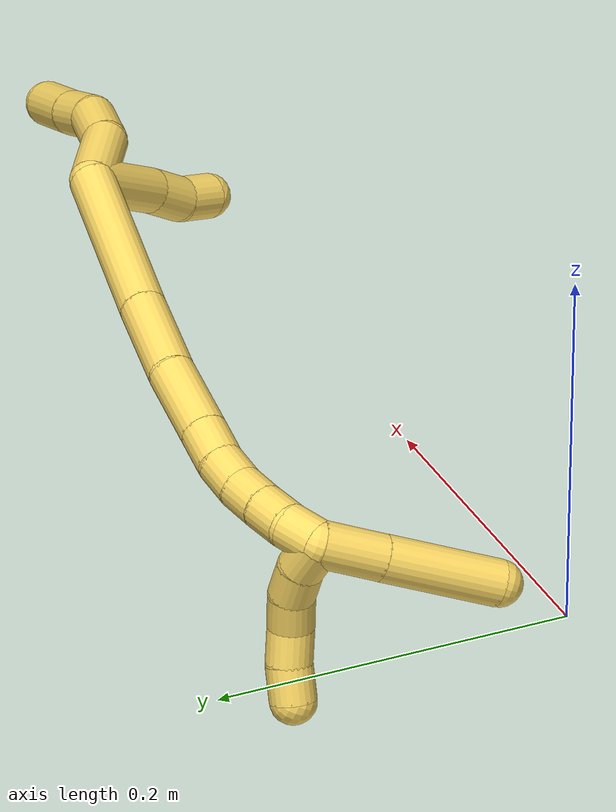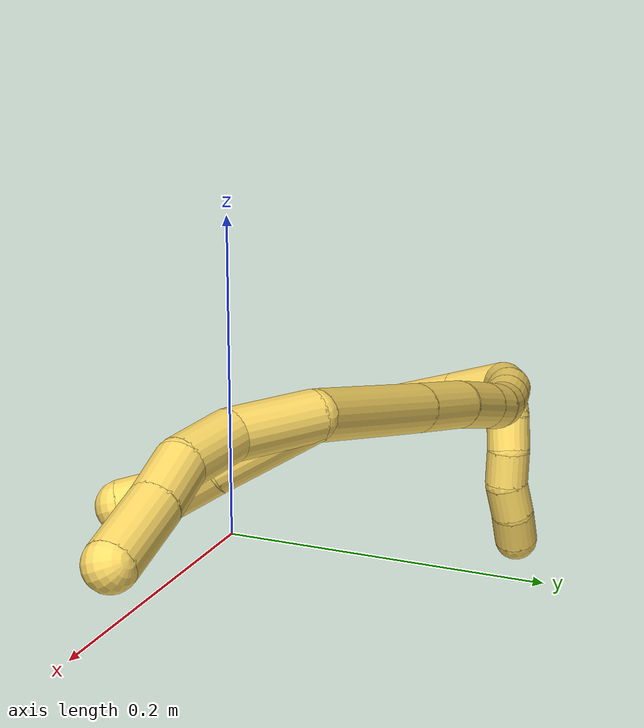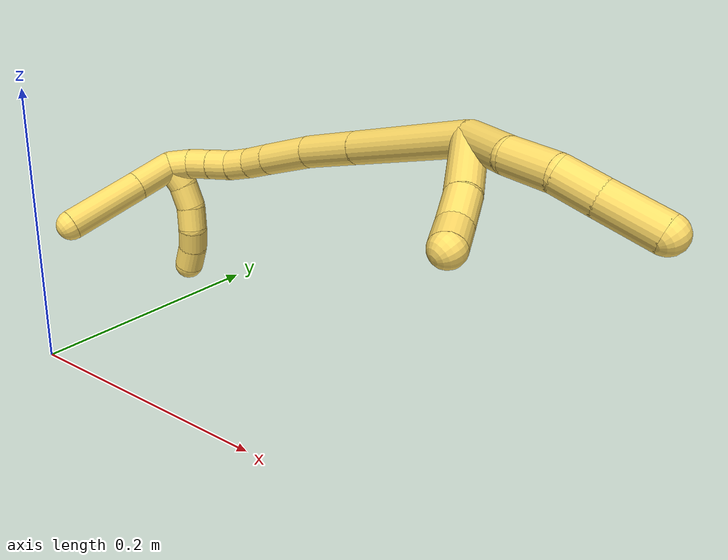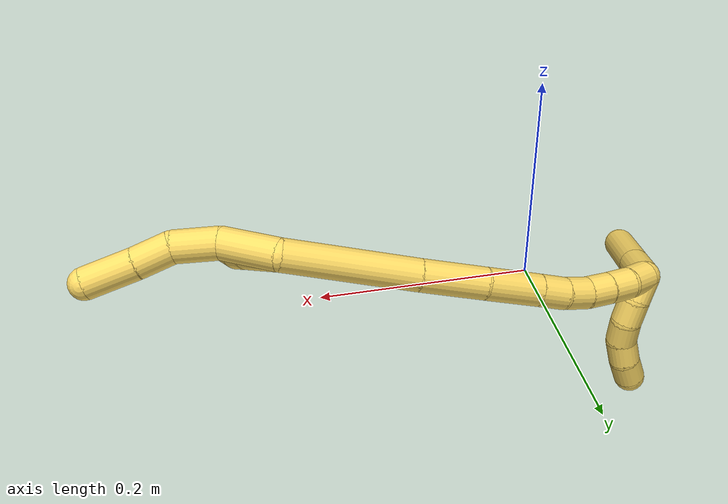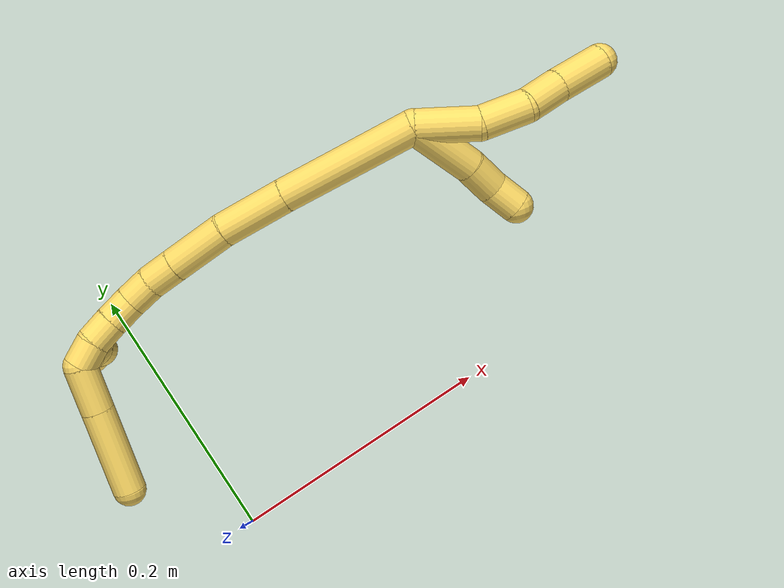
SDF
<sdf version="1.7">
 <world name="default">
  <model name="5">
   <static>0</static>
   <link name="5">
    <collision name="collision-cylinder-e_1_2_8">
     <pose>0.020608 -0.009097 -0.0047 2.04767 1.10965 1.58843</pose>
     <geometry><cylinder><radius>0.0125</radius><length>0.046023</length></cylinder></geometry>
     <surface>
      <friction><ode><mu>1.16</mu><mu2>1.16</mu2><slip1>0</slip1><slip2>0</slip2></ode></friction>
      <contact><ode><kp>1e+06</kp><kd>1</kd><max_vel>0</max_vel><min_depth>0.001</min_depth></ode></contact>
     </surface>
    </collision>
    <visual name="visual-cylinder-e_1_2_8">
     <pose>0.020608 -0.009097 -0.0047 2.04767 1.10965 1.58843</pose>
     <geometry><cylinder><radius>0.0125</radius><length>0.046023</length></cylinder></geometry>
     <material><ambient>1 0.858824 0.4 1</ambient></material>
    </visual>
    <collision name="collision-cylinder-e_2_8_9">
     <pose>0.058513 -0.021591 -0.008299 1.25718 1.36724 1.06937</pose>
     <geometry><cylinder><radius>0.0125</radius><length>0.035325</length></cylinder></geometry>
     <surface>
      <friction><ode><mu>1.16</mu><mu2>1.16</mu2><slip1>0</slip1><slip2>0</slip2></ode></friction>
      <contact><ode><kp>1e+06</kp><kd>1</kd><max_vel>0</max_vel><min_depth>0.001</min_depth></ode></contact>
     </surface>
    </collision>
    <visual name="visual-cylinder-e_2_8_9">
     <pose>0.058513 -0.021591 -0.008299 1.25718 1.36724 1.06937</pose>
     <geometry><cylinder><radius>0.0125</radius><length>0.035325</length></cylinder></geometry>
     <material><ambient>1 0.858824 0.4 1</ambient></material>
    </visual>
    <collision name="collision-cylinder-e_3_9_10">
     <pose>0.089731 -0.023003 -0.004982 -0.73036 1.36031 -0.599885</pose>
     <geometry><cylinder><radius>0.0125</radius><length>0.028468</length></cylinder></geometry>
     <surface>
      <friction><ode><mu>1.16</mu><mu2>1.16</mu2><slip1>0</slip1><slip2>0</slip2></ode></friction>
      <contact><ode><kp>1e+06</kp><kd>1</kd><max_vel>0</max_vel><min_depth>0.001</min_depth></ode></contact>
     </surface>
    </collision>
    <visual name="visual-cylinder-e_3_9_10">
     <pose>0.089731 -0.023003 -0.004982 -0.73036 1.36031 -0.599885</pose>
     <geometry><cylinder><radius>0.0125</radius><length>0.028468</length></cylinder></geometry>
     <material><ambient>1 0.858824 0.4 1</ambient></material>
    </visual>
    <collision name="collision-cylinder-e_4_10_6">
     <pose>0.123496 -0.01922 -0.000195 -0.610446 1.41397 -0.525862</pose>
     <geometry><cylinder><radius>0.0125</radius><length>0.040185</length></cylinder></geometry>
     <surface>
      <friction><ode><mu>1.16</mu><mu2>1.16</mu2><slip1>0</slip1><slip2>0</slip2></ode></friction>
      <contact><ode><kp>1e+06</kp><kd>1</kd><max_vel>0</max_vel><min_depth>0.001</min_depth></ode></contact>
     </surface>
    </collision>
    <visual name="visual-cylinder-e_4_10_6">
     <pose>0.123496 -0.01922 -0.000195 -0.610446 1.41397 -0.525862</pose>
     <geometry><cylinder><radius>0.0125</radius><length>0.040185</length></cylinder></geometry>
     <material><ambient>1 0.858824 0.4 1</ambient></material>
    </visual>
    <collision name="collision-cylinder-e_1_2_11">
     <pose>0.01671 -0.000923 -0.020201 3.09593 0.690589 3.0148</pose>
     <geometry><cylinder><radius>0.0125</radius><length>0.052466</length></cylinder></geometry>
     <surface>
      <friction><ode><mu>1.16</mu><mu2>1.16</mu2><slip1>0</slip1><slip2>0</slip2></ode></friction>
      <contact><ode><kp>1e+06</kp><kd>1</kd><max_vel>0</max_vel><min_depth>0.001</min_depth></ode></contact>
     </surface>
    </collision>
    <visual name="visual-cylinder-e_1_2_11">
     <pose>0.01671 -0.000923 -0.020201 3.09593 0.690589 3.0148</pose>
     <geometry><cylinder><radius>0.0125</radius><length>0.052466</length></cylinder></geometry>
     <material><ambient>1 0.858824 0.4 1</ambient></material>
    </visual>
    <collision name="collision-cylinder-e_2_11_12">
     <pose>0.040253 -0.001541 -0.051049 -3.1129 0.570401 -3.04381</pose>
     <geometry><cylinder><radius>0.0125</radius><length>0.02531</length></cylinder></geometry>
     <surface>
      <friction><ode><mu>1.16</mu><mu2>1.16</mu2><slip1>0</slip1><slip2>0</slip2></ode></friction>
      <contact><ode><kp>1e+06</kp><kd>1</kd><max_vel>0</max_vel><min_depth>0.001</min_depth></ode></contact>
     </surface>
    </collision>
    <visual name="visual-cylinder-e_2_11_12">
     <pose>0.040253 -0.001541 -0.051049 -3.1129 0.570401 -3.04381</pose>
     <geometry><cylinder><radius>0.0125</radius><length>0.02531</length></cylinder></geometry>
     <material><ambient>1 0.858824 0.4 1</ambient></material>
    </visual>
    <collision name="collision-cylinder-e_3_12_5">
     <pose>0.053239 -0.004046 -0.070513 2.83293 0.586708 2.19042</pose>
     <geometry><cylinder><radius>0.0125</radius><length>0.022224</length></cylinder></geometry>
     <surface>
      <friction><ode><mu>1.16</mu><mu2>1.16</mu2><slip1>0</slip1><slip2>0</slip2></ode></friction>
      <contact><ode><kp>1e+06</kp><kd>1</kd><max_vel>0</max_vel><min_depth>0.001</min_depth></ode></contact>
     </surface>
    </collision>
    <visual name="visual-cylinder-e_3_12_5">
     <pose>0.053239 -0.004046 -0.070513 2.83293 0.586708 2.19042</pose>
     <geometry><cylinder><radius>0.0125</radius><length>0.022224</length></cylinder></geometry>
     <material><ambient>1 0.858824 0.4 1</ambient></material>
    </visual>
    <collision name="collision-cylinder-e_1_2_13">
     <pose>-0.044232 0.022586 -0.013633 -2.11386 -1.033 1.57694</pose>
     <geometry><cylinder><radius>0.0125</radius><length>0.103003</length></cylinder></geometry>
     <surface>
      <friction><ode><mu>1.16</mu><mu2>1.16</mu2><slip1>0</slip1><slip2>0</slip2></ode></friction>
      <contact><ode><kp>1e+06</kp><kd>1</kd><max_vel>0</max_vel><min_depth>0.001</min_depth></ode></contact>
     </surface>
    </collision>
    <visual name="visual-cylinder-e_1_2_13">
     <pose>-0.044232 0.022586 -0.013633 -2.11386 -1.033 1.57694</pose>
     <geometry><cylinder><radius>0.0125</radius><length>0.103003</length></cylinder></geometry>
     <material><ambient>1 0.858824 0.4 1</ambient></material>
    </visual>
    <collision name="collision-cylinder-e_2_13_14">
     <pose>-0.11018 0.055954 -0.034542 -2.16439 -1.03113 1.63469</pose>
     <geometry><cylinder><radius>0.0125</radius><length>0.05063</length></cylinder></geometry>
     <surface>
      <friction><ode><mu>1.16</mu><mu2>1.16</mu2><slip1>0</slip1><slip2>0</slip2></ode></friction>
      <contact><ode><kp>1e+06</kp><kd>1</kd><max_vel>0</max_vel><min_depth>0.001</min_depth></ode></contact>
     </surface>
    </collision>
    <visual name="visual-cylinder-e_2_13_14">
     <pose>-0.11018 0.055954 -0.034542 -2.16439 -1.03113 1.63469</pose>
     <geometry><cylinder><radius>0.0125</radius><length>0.05063</length></cylinder></geometry>
     <material><ambient>1 0.858824 0.4 1</ambient></material>
    </visual>
    <collision name="collision-cylinder-e_3_14_15">
     <pose>-0.149794 0.076165 -0.050443 -2.31173 -0.950737 1.7259</pose>
     <geometry><cylinder><radius>0.0125</radius><length>0.043981</length></cylinder></geometry>
     <surface>
      <friction><ode><mu>1.16</mu><mu2>1.16</mu2><slip1>0</slip1><slip2>0</slip2></ode></friction>
      <contact><ode><kp>1e+06</kp><kd>1</kd><max_vel>0</max_vel><min_depth>0.001</min_depth></ode></contact>
     </surface>
    </collision>
    <visual name="visual-cylinder-e_3_14_15">
     <pose>-0.149794 0.076165 -0.050443 -2.31173 -0.950737 1.7259</pose>
     <geometry><cylinder><radius>0.0125</radius><length>0.043981</length></cylinder></geometry>
     <material><ambient>1 0.858824 0.4 1</ambient></material>
    </visual>
    <collision name="collision-cylinder-e_4_15_16">
     <pose>-0.176679 0.090461 -0.063481 -2.30739 -0.93954 1.70643</pose>
     <geometry><cylinder><radius>0.0125</radius><length>0.022266</length></cylinder></geometry>
     <surface>
      <friction><ode><mu>1.16</mu><mu2>1.16</mu2><slip1>0</slip1><slip2>0</slip2></ode></friction>
      <contact><ode><kp>1e+06</kp><kd>1</kd><max_vel>0</max_vel><min_depth>0.001</min_depth></ode></contact>
     </surface>
    </collision>
    <visual name="visual-cylinder-e_4_15_16">
     <pose>-0.176679 0.090461 -0.063481 -2.30739 -0.93954 1.70643</pose>
     <geometry><cylinder><radius>0.0125</radius><length>0.022266</length></cylinder></geometry>
     <material><ambient>1 0.858824 0.4 1</ambient></material>
    </visual>
    <collision name="collision-cylinder-e_5_16_17">
     <pose>-0.193849 0.098449 -0.072809 -2.57562 -0.952423 2.1149</pose>
     <geometry><cylinder><radius>0.0125</radius><length>0.020083</length></cylinder></geometry>
     <surface>
      <friction><ode><mu>1.16</mu><mu2>1.16</mu2><slip1>0</slip1><slip2>0</slip2></ode></friction>
      <contact><ode><kp>1e+06</kp><kd>1</kd><max_vel>0</max_vel><min_depth>0.001</min_depth></ode></contact>
     </surface>
    </collision>
    <visual name="visual-cylinder-e_5_16_17">
     <pose>-0.193849 0.098449 -0.072809 -2.57562 -0.952423 2.1149</pose>
     <geometry><cylinder><radius>0.0125</radius><length>0.020083</length></cylinder></geometry>
     <material><ambient>1 0.858824 0.4 1</ambient></material>
    </visual>
    <collision name="collision-cylinder-e_6_17_18">
     <pose>-0.210618 0.103174 -0.082624 -2.82555 -1.0299 2.59261</pose>
     <geometry><cylinder><radius>0.0125</radius><length>0.020034</length></cylinder></geometry>
     <surface>
      <friction><ode><mu>1.16</mu><mu2>1.16</mu2><slip1>0</slip1><slip2>0</slip2></ode></friction>
      <contact><ode><kp>1e+06</kp><kd>1</kd><max_vel>0</max_vel><min_depth>0.001</min_depth></ode></contact>
     </surface>
    </collision>
    <visual name="visual-cylinder-e_6_17_18">
     <pose>-0.210618 0.103174 -0.082624 -2.82555 -1.0299 2.59261</pose>
     <geometry><cylinder><radius>0.0125</radius><length>0.020034</length></cylinder></geometry>
     <material><ambient>1 0.858824 0.4 1</ambient></material>
    </visual>
    <collision name="collision-cylinder-e_7_18_19">
     <pose>-0.227632 0.106073 -0.092753 -2.89855 -1.00218 2.70283</pose>
     <geometry><cylinder><radius>0.0125</radius><length>0.020001</length></cylinder></geometry>
     <surface>
      <friction><ode><mu>1.16</mu><mu2>1.16</mu2><slip1>0</slip1><slip2>0</slip2></ode></friction>
      <contact><ode><kp>1e+06</kp><kd>1</kd><max_vel>0</max_vel><min_depth>0.001</min_depth></ode></contact>
     </surface>
    </collision>
    <visual name="visual-cylinder-e_7_18_19">
     <pose>-0.227632 0.106073 -0.092753 -2.89855 -1.00218 2.70283</pose>
     <geometry><cylinder><radius>0.0125</radius><length>0.020001</length></cylinder></geometry>
     <material><ambient>1 0.858824 0.4 1</ambient></material>
    </visual>
    <collision name="collision-cylinder-e_8_19_1">
     <pose>-0.243141 0.108173 -0.104995 -3.0274 -0.78691 2.86793</pose>
     <geometry><cylinder><radius>0.0125</radius><length>0.020002</length></cylinder></geometry>
     <surface>
      <friction><ode><mu>1.16</mu><mu2>1.16</mu2><slip1>0</slip1><slip2>0</slip2></ode></friction>
      <contact><ode><kp>1e+06</kp><kd>1</kd><max_vel>0</max_vel><min_depth>0.001</min_depth></ode></contact>
     </surface>
    </collision>
    <visual name="visual-cylinder-e_8_19_1">
     <pose>-0.243141 0.108173 -0.104995 -3.0274 -0.78691 2.86793</pose>
     <geometry><cylinder><radius>0.0125</radius><length>0.020002</length></cylinder></geometry>
     <material><ambient>1 0.858824 0.4 1</ambient></material>
    </visual>
    <collision name="collision-cylinder-e_1_1_20">
     <pose>-0.244328 0.117051 -0.111743 -1.53771 0.63046 -0.611212</pose>
     <geometry><cylinder><radius>0.0125</radius><length>0.02</length></cylinder></geometry>
     <surface>
      <friction><ode><mu>1.16</mu><mu2>1.16</mu2><slip1>0</slip1><slip2>0</slip2></ode></friction>
      <contact><ode><kp>1e+06</kp><kd>1</kd><max_vel>0</max_vel><min_depth>0.001</min_depth></ode></contact>
     </surface>
    </collision>
    <visual name="visual-cylinder-e_1_1_20">
     <pose>-0.244328 0.117051 -0.111743 -1.53771 0.63046 -0.611212</pose>
     <geometry><cylinder><radius>0.0125</radius><length>0.02</length></cylinder></geometry>
     <material><ambient>1 0.858824 0.4 1</ambient></material>
    </visual>
    <collision name="collision-cylinder-e_2_20_21">
     <pose>-0.233203 0.133421 -0.113429 -1.80203 0.55033 -0.684941</pose>
     <geometry><cylinder><radius>0.0125</radius><length>0.02</length></cylinder></geometry>
     <surface>
      <friction><ode><mu>1.16</mu><mu2>1.16</mu2><slip1>0</slip1><slip2>0</slip2></ode></friction>
      <contact><ode><kp>1e+06</kp><kd>1</kd><max_vel>0</max_vel><min_depth>0.001</min_depth></ode></contact>
     </surface>
    </collision>
    <visual name="visual-cylinder-e_2_20_21">
     <pose>-0.233203 0.133421 -0.113429 -1.80203 0.55033 -0.684941</pose>
     <geometry><cylinder><radius>0.0125</radius><length>0.02</length></cylinder></geometry>
     <material><ambient>1 0.858824 0.4 1</ambient></material>
    </visual>
    <collision name="collision-cylinder-e_3_21_22">
     <pose>-0.224377 0.150132 -0.119415 -2.01763 0.367901 -0.57457</pose>
     <geometry><cylinder><radius>0.0125</radius><length>0.02</length></cylinder></geometry>
     <surface>
      <friction><ode><mu>1.16</mu><mu2>1.16</mu2><slip1>0</slip1><slip2>0</slip2></ode></friction>
      <contact><ode><kp>1e+06</kp><kd>1</kd><max_vel>0</max_vel><min_depth>0.001</min_depth></ode></contact>
     </surface>
    </collision>
    <visual name="visual-cylinder-e_3_21_22">
     <pose>-0.224377 0.150132 -0.119415 -2.01763 0.367901 -0.57457</pose>
     <geometry><cylinder><radius>0.0125</radius><length>0.02</length></cylinder></geometry>
     <material><ambient>1 0.858824 0.4 1</ambient></material>
    </visual>
    <collision name="collision-cylinder-e_4_22_23">
     <pose>-0.22016 0.167973 -0.126729 -1.90592 0.062083 -0.087334</pose>
     <geometry><cylinder><radius>0.0125</radius><length>0.02</length></cylinder></geometry>
     <surface>
      <friction><ode><mu>1.16</mu><mu2>1.16</mu2><slip1>0</slip1><slip2>0</slip2></ode></friction>
      <contact><ode><kp>1e+06</kp><kd>1</kd><max_vel>0</max_vel><min_depth>0.001</min_depth></ode></contact>
     </surface>
    </collision>
    <visual name="visual-cylinder-e_4_22_23">
     <pose>-0.22016 0.167973 -0.126729 -1.90592 0.062083 -0.087334</pose>
     <geometry><cylinder><radius>0.0125</radius><length>0.02</length></cylinder></geometry>
     <material><ambient>1 0.858824 0.4 1</ambient></material>
    </visual>
    <collision name="collision-cylinder-e_5_23_4">
     <pose>-0.219983 0.186267 -0.13461 -2.04909 -0.044314 0.072869</pose>
     <geometry><cylinder><radius>0.0125</radius><length>0.02</length></cylinder></geometry>
     <surface>
      <friction><ode><mu>1.16</mu><mu2>1.16</mu2><slip1>0</slip1><slip2>0</slip2></ode></friction>
      <contact><ode><kp>1e+06</kp><kd>1</kd><max_vel>0</max_vel><min_depth>0.001</min_depth></ode></contact>
     </surface>
    </collision>
    <visual name="visual-cylinder-e_5_23_4">
     <pose>-0.219983 0.186267 -0.13461 -2.04909 -0.044314 0.072869</pose>
     <geometry><cylinder><radius>0.0125</radius><length>0.02</length></cylinder></geometry>
     <material><ambient>1 0.858824 0.4 1</ambient></material>
    </visual>
    <collision name="collision-cylinder-e_1_1_24">
     <pose>-0.24927 0.107409 -0.129426 3.05173 0.054459 1.08927</pose>
     <geometry><cylinder><radius>0.0125</radius><length>0.035024</length></cylinder></geometry>
     <surface>
      <friction><ode><mu>1.16</mu><mu2>1.16</mu2><slip1>0</slip1><slip2>0</slip2></ode></friction>
      <contact><ode><kp>1e+06</kp><kd>1</kd><max_vel>0</max_vel><min_depth>0.001</min_depth></ode></contact>
     </surface>
    </collision>
    <visual name="visual-cylinder-e_1_1_24">
     <pose>-0.24927 0.107409 -0.129426 3.05173 0.054459 1.08927</pose>
     <geometry><cylinder><radius>0.0125</radius><length>0.035024</length></cylinder></geometry>
     <material><ambient>1 0.858824 0.4 1</ambient></material>
    </visual>
    <collision name="collision-cylinder-e_2_24_3">
     <pose>-0.246613 0.102768 -0.179139 3.04679 0.052476 1.0107</pose>
     <geometry><cylinder><radius>0.0125</radius><length>0.064976</length></cylinder></geometry>
     <surface>
      <friction><ode><mu>1.16</mu><mu2>1.16</mu2><slip1>0</slip1><slip2>0</slip2></ode></friction>
      <contact><ode><kp>1e+06</kp><kd>1</kd><max_vel>0</max_vel><min_depth>0.001</min_depth></ode></contact>
     </surface>
    </collision>
    <visual name="visual-cylinder-e_2_24_3">
     <pose>-0.246613 0.102768 -0.179139 3.04679 0.052476 1.0107</pose>
     <geometry><cylinder><radius>0.0125</radius><length>0.064976</length></cylinder></geometry>
     <material><ambient>1 0.858824 0.4 1</ambient></material>
    </visual>
    <collision name="collision-sphere-3">
     <pose>-0.244909 0.099698 -0.211436 0 -0 0</pose>
     <geometry><sphere><radius>0.0125</radius></sphere></geometry>
     <surface>
      <friction><ode><mu>1.16</mu><mu2>1.16</mu2><slip1>0</slip1><slip2>0</slip2></ode></friction>
      <contact><ode><kp>1e+06</kp><kd>1</kd><max_vel>0</max_vel><min_depth>0.001</min_depth></ode></contact>
     </surface>
    </collision>
    <visual name="visual-sphere-3">
     <pose>-0.244909 0.099698 -0.211436 0 -0 0</pose>
     <geometry><sphere><radius>0.0125</radius></sphere></geometry>
     <material><ambient>1 0.858824 0.4 1</ambient></material>
    </visual>
    <collision name="collision-sphere-24">
     <pose>-0.248317 0.105839 -0.146841 0 -0 0</pose>
     <geometry><sphere><radius>0.0125</radius></sphere></geometry>
     <surface>
      <friction><ode><mu>1.16</mu><mu2>1.16</mu2><slip1>0</slip1><slip2>0</slip2></ode></friction>
      <contact><ode><kp>1e+06</kp><kd>1</kd><max_vel>0</max_vel><min_depth>0.001</min_depth></ode></contact>
     </surface>
    </collision>
    <visual name="visual-sphere-24">
     <pose>-0.248317 0.105839 -0.146841 0 -0 0</pose>
     <geometry><sphere><radius>0.0125</radius></sphere></geometry>
     <material><ambient>1 0.858824 0.4 1</ambient></material>
    </visual>
    <collision name="collision-sphere-4">
     <pose>-0.220426 0.195136 -0.139208 0 -0 0</pose>
     <geometry><sphere><radius>0.0125</radius></sphere></geometry>
     <surface>
      <friction><ode><mu>1.16</mu><mu2>1.16</mu2><slip1>0</slip1><slip2>0</slip2></ode></friction>
      <contact><ode><kp>1e+06</kp><kd>1</kd><max_vel>0</max_vel><min_depth>0.001</min_depth></ode></contact>
     </surface>
    </collision>
    <visual name="visual-sphere-4">
     <pose>-0.220426 0.195136 -0.139208 0 -0 0</pose>
     <geometry><sphere><radius>0.0125</radius></sphere></geometry>
     <material><ambient>1 0.858824 0.4 1</ambient></material>
    </visual>
    <collision name="collision-sphere-23">
     <pose>-0.21954 0.177398 -0.130012 0 -0 0</pose>
     <geometry><sphere><radius>0.0125</radius></sphere></geometry>
     <surface>
      <friction><ode><mu>1.16</mu><mu2>1.16</mu2><slip1>0</slip1><slip2>0</slip2></ode></friction>
      <contact><ode><kp>1e+06</kp><kd>1</kd><max_vel>0</max_vel><min_depth>0.001</min_depth></ode></contact>
     </surface>
    </collision>
    <visual name="visual-sphere-23">
     <pose>-0.21954 0.177398 -0.130012 0 -0 0</pose>
     <geometry><sphere><radius>0.0125</radius></sphere></geometry>
     <material><ambient>1 0.858824 0.4 1</ambient></material>
    </visual>
    <collision name="collision-sphere-22">
     <pose>-0.22078 0.158547 -0.123447 0 -0 0</pose>
     <geometry><sphere><radius>0.0125</radius></sphere></geometry>
     <surface>
      <friction><ode><mu>1.16</mu><mu2>1.16</mu2><slip1>0</slip1><slip2>0</slip2></ode></friction>
      <contact><ode><kp>1e+06</kp><kd>1</kd><max_vel>0</max_vel><min_depth>0.001</min_depth></ode></contact>
     </surface>
    </collision>
    <visual name="visual-sphere-22">
     <pose>-0.22078 0.158547 -0.123447 0 -0 0</pose>
     <geometry><sphere><radius>0.0125</radius></sphere></geometry>
     <material><ambient>1 0.858824 0.4 1</ambient></material>
    </visual>
    <collision name="collision-sphere-21">
     <pose>-0.227974 0.141718 -0.115383 0 -0 0</pose>
     <geometry><sphere><radius>0.0125</radius></sphere></geometry>
     <surface>
      <friction><ode><mu>1.16</mu><mu2>1.16</mu2><slip1>0</slip1><slip2>0</slip2></ode></friction>
      <contact><ode><kp>1e+06</kp><kd>1</kd><max_vel>0</max_vel><min_depth>0.001</min_depth></ode></contact>
     </surface>
    </collision>
    <visual name="visual-sphere-21">
     <pose>-0.227974 0.141718 -0.115383 0 -0 0</pose>
     <geometry><sphere><radius>0.0125</radius></sphere></geometry>
     <material><ambient>1 0.858824 0.4 1</ambient></material>
    </visual>
    <collision name="collision-sphere-20">
     <pose>-0.238433 0.125124 -0.111476 0 -0 0</pose>
     <geometry><sphere><radius>0.0125</radius></sphere></geometry>
     <surface>
      <friction><ode><mu>1.16</mu><mu2>1.16</mu2><slip1>0</slip1><slip2>0</slip2></ode></friction>
      <contact><ode><kp>1e+06</kp><kd>1</kd><max_vel>0</max_vel><min_depth>0.001</min_depth></ode></contact>
     </surface>
    </collision>
    <visual name="visual-sphere-20">
     <pose>-0.238433 0.125124 -0.111476 0 -0 0</pose>
     <geometry><sphere><radius>0.0125</radius></sphere></geometry>
     <material><ambient>1 0.858824 0.4 1</ambient></material>
    </visual>
    <collision name="collision-sphere-11">
     <pose>0.03342 -0.001846 -0.040402 0 -0 0</pose>
     <geometry><sphere><radius>0.0125</radius></sphere></geometry>
     <surface>
      <friction><ode><mu>1.16</mu><mu2>1.16</mu2><slip1>0</slip1><slip2>0</slip2></ode></friction>
      <contact><ode><kp>1e+06</kp><kd>1</kd><max_vel>0</max_vel><min_depth>0.001</min_depth></ode></contact>
     </surface>
    </collision>
    <visual name="visual-sphere-11">
     <pose>0.03342 -0.001846 -0.040402 0 -0 0</pose>
     <geometry><sphere><radius>0.0125</radius></sphere></geometry>
     <material><ambient>1 0.858824 0.4 1</ambient></material>
    </visual>
    <collision name="collision-sphere-6">
     <pose>0.143342 -0.017421 0.002376 0 -0 0</pose>
     <geometry><sphere><radius>0.0125</radius></sphere></geometry>
     <surface>
      <friction><ode><mu>1.16</mu><mu2>1.16</mu2><slip1>0</slip1><slip2>0</slip2></ode></friction>
      <contact><ode><kp>1e+06</kp><kd>1</kd><max_vel>0</max_vel><min_depth>0.001</min_depth></ode></contact>
     </surface>
    </collision>
    <visual name="visual-sphere-6">
     <pose>0.143342 -0.017421 0.002376 0 -0 0</pose>
     <geometry><sphere><radius>0.0125</radius></sphere></geometry>
     <material><ambient>1 0.858824 0.4 1</ambient></material>
    </visual>
    <collision name="collision-sphere-10">
     <pose>0.10365 -0.021019 -0.002766 0 -0 0</pose>
     <geometry><sphere><radius>0.0125</radius></sphere></geometry>
     <surface>
      <friction><ode><mu>1.16</mu><mu2>1.16</mu2><slip1>0</slip1><slip2>0</slip2></ode></friction>
      <contact><ode><kp>1e+06</kp><kd>1</kd><max_vel>0</max_vel><min_depth>0.001</min_depth></ode></contact>
     </surface>
    </collision>
    <visual name="visual-sphere-10">
     <pose>0.10365 -0.021019 -0.002766 0 -0 0</pose>
     <geometry><sphere><radius>0.0125</radius></sphere></geometry>
     <material><ambient>1 0.858824 0.4 1</ambient></material>
    </visual>
    <collision name="collision-sphere-9">
     <pose>0.075811 -0.024987 -0.007197 0 -0 0</pose>
     <geometry><sphere><radius>0.0125</radius></sphere></geometry>
     <surface>
      <friction><ode><mu>1.16</mu><mu2>1.16</mu2><slip1>0</slip1><slip2>0</slip2></ode></friction>
      <contact><ode><kp>1e+06</kp><kd>1</kd><max_vel>0</max_vel><min_depth>0.001</min_depth></ode></contact>
     </surface>
    </collision>
    <visual name="visual-sphere-9">
     <pose>0.075811 -0.024987 -0.007197 0 -0 0</pose>
     <geometry><sphere><radius>0.0125</radius></sphere></geometry>
     <material><ambient>1 0.858824 0.4 1</ambient></material>
    </visual>
    <collision name="collision-sphere-2">
     <geometry><sphere><radius>0.0125</radius></sphere></geometry>
     <surface>
      <friction><ode><mu>1.16</mu><mu2>1.16</mu2><slip1>0</slip1><slip2>0</slip2></ode></friction>
      <contact><ode><kp>1e+06</kp><kd>1</kd><max_vel>0</max_vel><min_depth>0.001</min_depth></ode></contact>
     </surface>
    </collision>
    <visual name="visual-sphere-2">
     <geometry><sphere><radius>0.0125</radius></sphere></geometry>
     <material><ambient>1 0.858824 0.4 1</ambient></material>
    </visual>
    <collision name="collision-sphere-19">
     <pose>-0.236059 0.107369 -0.09798 0 -0 0</pose>
     <geometry><sphere><radius>0.0125</radius></sphere></geometry>
     <surface>
      <friction><ode><mu>1.16</mu><mu2>1.16</mu2><slip1>0</slip1><slip2>0</slip2></ode></friction>
      <contact><ode><kp>1e+06</kp><kd>1</kd><max_vel>0</max_vel><min_depth>0.001</min_depth></ode></contact>
     </surface>
    </collision>
    <visual name="visual-sphere-19">
     <pose>-0.236059 0.107369 -0.09798 0 -0 0</pose>
     <geometry><sphere><radius>0.0125</radius></sphere></geometry>
     <material><ambient>1 0.858824 0.4 1</ambient></material>
    </visual>
    <collision name="collision-sphere-8">
     <pose>0.041216 -0.018194 -0.0094 0 -0 0</pose>
     <geometry><sphere><radius>0.0125</radius></sphere></geometry>
     <surface>
      <friction><ode><mu>1.16</mu><mu2>1.16</mu2><slip1>0</slip1><slip2>0</slip2></ode></friction>
      <contact><ode><kp>1e+06</kp><kd>1</kd><max_vel>0</max_vel><min_depth>0.001</min_depth></ode></contact>
     </surface>
    </collision>
    <visual name="visual-sphere-8">
     <pose>0.041216 -0.018194 -0.0094 0 -0 0</pose>
     <geometry><sphere><radius>0.0125</radius></sphere></geometry>
     <material><ambient>1 0.858824 0.4 1</ambient></material>
    </visual>
    <collision name="collision-sphere-12">
     <pose>0.047087 -0.001235 -0.061696 0 -0 0</pose>
     <geometry><sphere><radius>0.0125</radius></sphere></geometry>
     <surface>
      <friction><ode><mu>1.16</mu><mu2>1.16</mu2><slip1>0</slip1><slip2>0</slip2></ode></friction>
      <contact><ode><kp>1e+06</kp><kd>1</kd><max_vel>0</max_vel><min_depth>0.001</min_depth></ode></contact>
     </surface>
    </collision>
    <visual name="visual-sphere-12">
     <pose>0.047087 -0.001235 -0.061696 0 -0 0</pose>
     <geometry><sphere><radius>0.0125</radius></sphere></geometry>
     <material><ambient>1 0.858824 0.4 1</ambient></material>
    </visual>
    <collision name="collision-sphere-5">
     <pose>0.059391 -0.006857 -0.079329 0 -0 0</pose>
     <geometry><sphere><radius>0.0125</radius></sphere></geometry>
     <surface>
      <friction><ode><mu>1.16</mu><mu2>1.16</mu2><slip1>0</slip1><slip2>0</slip2></ode></friction>
      <contact><ode><kp>1e+06</kp><kd>1</kd><max_vel>0</max_vel><min_depth>0.001</min_depth></ode></contact>
     </surface>
    </collision>
    <visual name="visual-sphere-5">
     <pose>0.059391 -0.006857 -0.079329 0 -0 0</pose>
     <geometry><sphere><radius>0.0125</radius></sphere></geometry>
     <material><ambient>1 0.858824 0.4 1</ambient></material>
    </visual>
    <collision name="collision-sphere-13">
     <pose>-0.088463 0.045172 -0.027266 0 -0 0</pose>
     <geometry><sphere><radius>0.0125</radius></sphere></geometry>
     <surface>
      <friction><ode><mu>1.16</mu><mu2>1.16</mu2><slip1>0</slip1><slip2>0</slip2></ode></friction>
      <contact><ode><kp>1e+06</kp><kd>1</kd><max_vel>0</max_vel><min_depth>0.001</min_depth></ode></contact>
     </surface>
    </collision>
    <visual name="visual-sphere-13">
     <pose>-0.088463 0.045172 -0.027266 0 -0 0</pose>
     <geometry><sphere><radius>0.0125</radius></sphere></geometry>
     <material><ambient>1 0.858824 0.4 1</ambient></material>
    </visual>
    <collision name="collision-sphere-14">
     <pose>-0.131898 0.066737 -0.041818 0 -0 0</pose>
     <geometry><sphere><radius>0.0125</radius></sphere></geometry>
     <surface>
      <friction><ode><mu>1.16</mu><mu2>1.16</mu2><slip1>0</slip1><slip2>0</slip2></ode></friction>
      <contact><ode><kp>1e+06</kp><kd>1</kd><max_vel>0</max_vel><min_depth>0.001</min_depth></ode></contact>
     </surface>
    </collision>
    <visual name="visual-sphere-14">
     <pose>-0.131898 0.066737 -0.041818 0 -0 0</pose>
     <geometry><sphere><radius>0.0125</radius></sphere></geometry>
     <material><ambient>1 0.858824 0.4 1</ambient></material>
    </visual>
    <collision name="collision-sphere-15">
     <pose>-0.167691 0.085594 -0.059068 0 -0 0</pose>
     <geometry><sphere><radius>0.0125</radius></sphere></geometry>
     <surface>
      <friction><ode><mu>1.16</mu><mu2>1.16</mu2><slip1>0</slip1><slip2>0</slip2></ode></friction>
      <contact><ode><kp>1e+06</kp><kd>1</kd><max_vel>0</max_vel><min_depth>0.001</min_depth></ode></contact>
     </surface>
    </collision>
    <visual name="visual-sphere-15">
     <pose>-0.167691 0.085594 -0.059068 0 -0 0</pose>
     <geometry><sphere><radius>0.0125</radius></sphere></geometry>
     <material><ambient>1 0.858824 0.4 1</ambient></material>
    </visual>
    <collision name="collision-sphere-16">
     <pose>-0.185667 0.095328 -0.067895 0 -0 0</pose>
     <geometry><sphere><radius>0.0125</radius></sphere></geometry>
     <surface>
      <friction><ode><mu>1.16</mu><mu2>1.16</mu2><slip1>0</slip1><slip2>0</slip2></ode></friction>
      <contact><ode><kp>1e+06</kp><kd>1</kd><max_vel>0</max_vel><min_depth>0.001</min_depth></ode></contact>
     </surface>
    </collision>
    <visual name="visual-sphere-16">
     <pose>-0.185667 0.095328 -0.067895 0 -0 0</pose>
     <geometry><sphere><radius>0.0125</radius></sphere></geometry>
     <material><ambient>1 0.858824 0.4 1</ambient></material>
    </visual>
    <collision name="collision-sphere-17">
     <pose>-0.202031 0.101571 -0.077722 0 -0 0</pose>
     <geometry><sphere><radius>0.0125</radius></sphere></geometry>
     <surface>
      <friction><ode><mu>1.16</mu><mu2>1.16</mu2><slip1>0</slip1><slip2>0</slip2></ode></friction>
      <contact><ode><kp>1e+06</kp><kd>1</kd><max_vel>0</max_vel><min_depth>0.001</min_depth></ode></contact>
     </surface>
    </collision>
    <visual name="visual-sphere-17">
     <pose>-0.202031 0.101571 -0.077722 0 -0 0</pose>
     <geometry><sphere><radius>0.0125</radius></sphere></geometry>
     <material><ambient>1 0.858824 0.4 1</ambient></material>
    </visual>
    <collision name="collision-sphere-18">
     <pose>-0.219205 0.104777 -0.087527 0 -0 0</pose>
     <geometry><sphere><radius>0.0125</radius></sphere></geometry>
     <surface>
      <friction><ode><mu>1.16</mu><mu2>1.16</mu2><slip1>0</slip1><slip2>0</slip2></ode></friction>
      <contact><ode><kp>1e+06</kp><kd>1</kd><max_vel>0</max_vel><min_depth>0.001</min_depth></ode></contact>
     </surface>
    </collision>
    <visual name="visual-sphere-18">
     <pose>-0.219205 0.104777 -0.087527 0 -0 0</pose>
     <geometry><sphere><radius>0.0125</radius></sphere></geometry>
     <material><ambient>1 0.858824 0.4 1</ambient></material>
    </visual>
    <collision name="collision-sphere-1">
     <pose>-0.250223 0.108978 -0.11201 0 -0 0</pose>
     <geometry><sphere><radius>0.0125</radius></sphere></geometry>
     <surface>
      <friction><ode><mu>1.16</mu><mu2>1.16</mu2><slip1>0</slip1><slip2>0</slip2></ode></friction>
      <contact><ode><kp>1e+06</kp><kd>1</kd><max_vel>0</max_vel><min_depth>0.001</min_depth></ode></contact>
     </surface>
    </collision>
    <visual name="visual-sphere-1">
     <pose>-0.250223 0.108978 -0.11201 0 -0 0</pose>
     <geometry><sphere><radius>0.0125</radius></sphere></geometry>
     <material><ambient>1 0.858824 0.4 1</ambient></material>
    </visual>
    <inertial>
     <pose>-0.096226 0.055471 -0.062303 0 -0 0</pose>
     <mass>0.75</mass>
     <inertia><ixx>9.8e-05</ixx><ixy>0</ixy><ixz>0</ixz><iyy>0.000223</iyy><iyz>0</iyz><izz>-9e-06</izz></inertia>
    </inertial>
   </link>
   <pose>0.249613 0.164378 0.173406 -1.12666 0.294383 -0.176534</pose>
  </model>
 </world>
</sdf>
